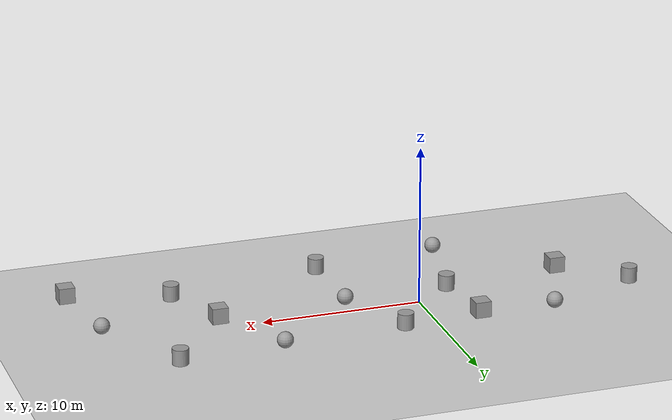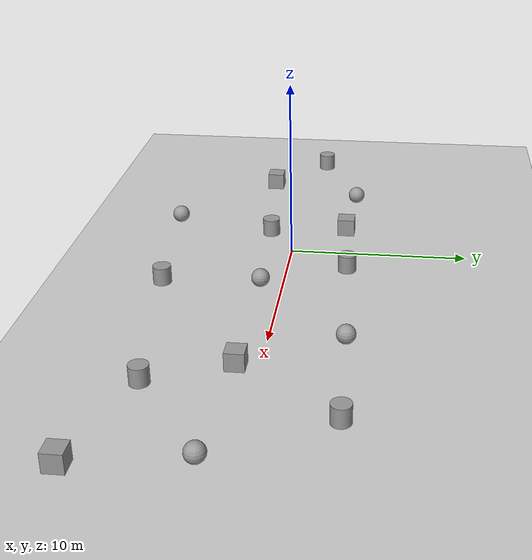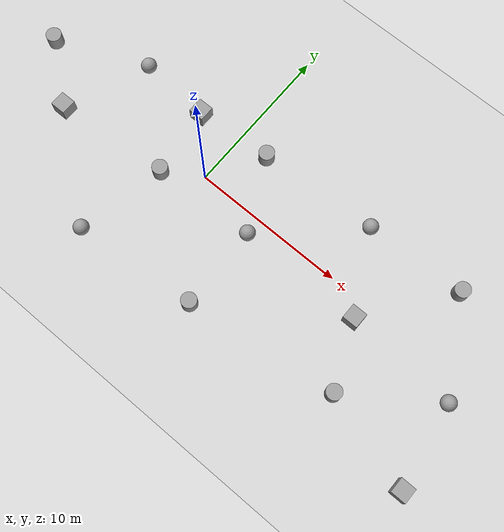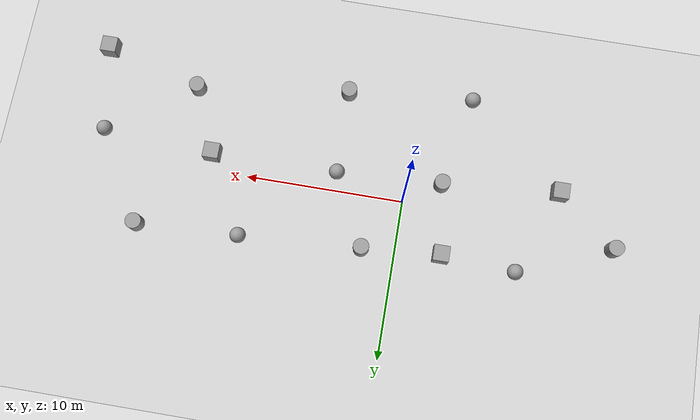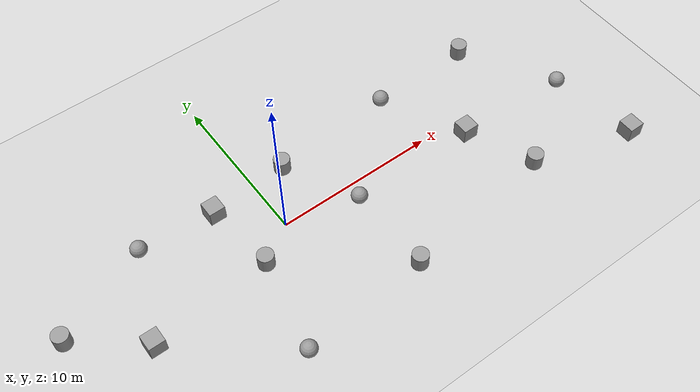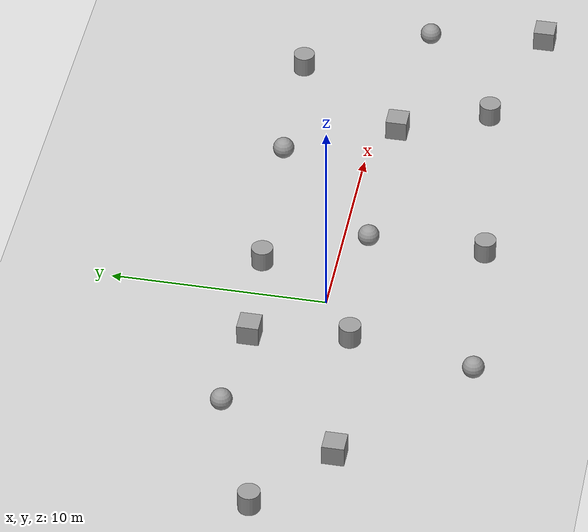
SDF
<sdf version="1.7">
 <world name="default">
  <light name="sun" type="directional">
   <pose>0 0 10 0 -0 0</pose>
   <diffuse>0.8 0.8 0.8 1</diffuse>
   <specular>0.2 0.2 0.2 1</specular>
   <attenuation>
    <range>1000</range>
    <constant>0.9</constant>
    <linear>0.01</linear>
    <quadratic>0.001</quadratic>
   </attenuation>
   <direction>-0.5 0.1 -0.9</direction>
   <spot><inner_angle>0</inner_angle><outer_angle>0</outer_angle><falloff>0</falloff></spot>
  </light>
  <model name="ground_plane">
   <static>1</static>
   <link name="link">
    <collision name="collision">
     <geometry><plane><normal>0 0 1</normal><size>100 100</size></plane></geometry>
     <surface>
      <contact><collide_bitmask>65535</collide_bitmask></contact>
      <friction><ode><mu>100</mu><mu2>50</mu2></ode></friction>
     </surface>
    </collision>
    <visual name="visual">
     <cast_shadows>0</cast_shadows>
     <geometry><plane><normal>0 0 1</normal><size>100 100</size></plane></geometry>
     <material>
      <script><uri>file://media/materials/scripts/gazebo.material</uri><name>Gazebo/Grey</name></script>
     </material>
    </visual>
   </link>
  </model>
  <gravity>0 0 -9.8</gravity>
  <magnetic_field>6e-06 2.3e-05 -4.2e-05</magnetic_field>
  <atmosphere type="adiabatic"/>
  <physics type="ode">
   <max_step_size>0.001</max_step_size>
   <real_time_factor>1</real_time_factor>
   <real_time_update_rate>600</real_time_update_rate>
  </physics>
  <scene><ambient>0.4 0.4 0.4 1</ambient><background>0.7 0.7 0.7 1</background><shadows>1</shadows></scene>
  <spherical_coordinates>
   <surface_model>EARTH_WGS84</surface_model>
   <latitude_deg>0</latitude_deg>
   <longitude_deg>0</longitude_deg>
   <elevation>0</elevation>
   <heading_deg>0</heading_deg>
  </spherical_coordinates>
  <model name="unit_cylinder">
   <pose>2.08591 3.37432 0.499998 3e-06 -2e-06 0</pose>
   <link name="link">
    <inertial>
     <mass>1</mass>
     <inertia><ixx>0.145833</ixx><ixy>0</ixy><ixz>0</ixz><iyy>0.145833</iyy><iyz>0</iyz><izz>0.125</izz></inertia>
    </inertial>
    <collision name="collision">
     <geometry><cylinder><radius>0.5</radius><length>1</length></cylinder></geometry>
    </collision>
    <visual name="visual">
     <geometry><cylinder><radius>0.5</radius><length>1</length></cylinder></geometry>
     <material>
      <script><name>Gazebo/Grey</name><uri>file://media/materials/scripts/gazebo.material</uri></script>
     </material>
    </visual>
   </link>
  </model>
  <model name="unit_sphere">
   <pose>4.37819 -1.17689 0.5 0 -0 0</pose>
   <link name="link">
    <inertial>
     <mass>1</mass>
     <inertia><ixx>0.1</ixx><ixy>0</ixy><ixz>0</ixz><iyy>0.1</iyy><iyz>0</iyz><izz>0.1</izz></inertia>
    </inertial>
    <collision name="collision"><geometry><sphere><radius>0.5</radius></sphere></geometry></collision>
    <visual name="visual">
     <geometry><sphere><radius>0.5</radius></sphere></geometry>
     <material>
      <script><name>Gazebo/Grey</name><uri>file://media/materials/scripts/gazebo.material</uri></script>
     </material>
    </visual>
   </link>
  </model>
  <model name="unit_cylinder_0">
   <pose>-2.29814 -1.50446 0.499998 3e-06 -2e-06 0</pose>
   <link name="link">
    <inertial>
     <mass>1</mass>
     <inertia><ixx>0.145833</ixx><ixy>0</ixy><ixz>0</ixz><iyy>0.145833</iyy><iyz>0</iyz><izz>0.125</izz></inertia>
    </inertial>
    <collision name="collision">
     <geometry><cylinder><radius>0.5</radius><length>1</length></cylinder></geometry>
    </collision>
    <visual name="visual">
     <geometry><cylinder><radius>0.5</radius><length>1</length></cylinder></geometry>
     <material>
      <script><name>Gazebo/Grey</name><uri>file://media/materials/scripts/gazebo.material</uri></script>
     </material>
    </visual>
   </link>
  </model>
  <model name="unit_box">
   <pose>-2.87318 2.97995 0.499995 0 -1e-05 0</pose>
   <link name="link">
    <inertial>
     <mass>1</mass>
     <inertia>
      <ixx>0.166667</ixx>
      <ixy>0</ixy>
      <ixz>0</ixz>
      <iyy>0.166667</iyy>
      <iyz>0</iyz>
      <izz>0.166667</izz>
     </inertia>
    </inertial>
    <collision name="collision"><geometry><box><size>1 1 1</size></box></geometry></collision>
    <visual name="visual">
     <geometry><box><size>1 1 1</size></box></geometry>
     <material>
      <script><name>Gazebo/Grey</name><uri>file://media/materials/scripts/gazebo.material</uri></script>
     </material>
    </visual>
   </link>
  </model>
  <model name="unit_sphere_0">
   <pose>9.79038 3.86215 0.5 0 -0 0</pose>
   <link name="link">
    <inertial>
     <mass>1</mass>
     <inertia><ixx>0.1</ixx><ixy>0</ixy><ixz>0</ixz><iyy>0.1</iyy><iyz>0</iyz><izz>0.1</izz></inertia>
    </inertial>
    <collision name="collision"><geometry><sphere><radius>0.5</radius></sphere></geometry></collision>
    <visual name="visual">
     <geometry><sphere><radius>0.5</radius></sphere></geometry>
     <material>
      <script><name>Gazebo/Grey</name><uri>file://media/materials/scripts/gazebo.material</uri></script>
     </material>
    </visual>
   </link>
  </model>
  <model name="unit_box_0">
   <pose>12.429 -1.14952 0.499995 -1e-05 -0 -0</pose>
   <link name="link">
    <inertial>
     <mass>1</mass>
     <inertia>
      <ixx>0.166667</ixx>
      <ixy>0</ixy>
      <ixz>0</ixz>
      <iyy>0.166667</iyy>
      <iyz>0</iyz>
      <izz>0.166667</izz>
     </inertia>
    </inertial>
    <collision name="collision"><geometry><box><size>1 1 1</size></box></geometry></collision>
    <visual name="visual">
     <geometry><box><size>1 1 1</size></box></geometry>
     <material>
      <script><name>Gazebo/Grey</name><uri>file://media/materials/scripts/gazebo.material</uri></script>
     </material>
    </visual>
   </link>
  </model>
  <model name="unit_cylinder_1">
   <pose>16.2912 4.10525 0.499992 -3e-06 3e-06 0</pose>
   <link name="link">
    <inertial>
     <mass>1</mass>
     <inertia><ixx>0.145833</ixx><ixy>0</ixy><ixz>0</ixz><iyy>0.145833</iyy><iyz>0</iyz><izz>0.125</izz></inertia>
    </inertial>
    <collision name="collision">
     <geometry><cylinder><radius>0.5</radius><length>1</length></cylinder></geometry>
    </collision>
    <visual name="visual">
     <geometry><cylinder><radius>0.5</radius><length>1</length></cylinder></geometry>
     <material>
      <script><name>Gazebo/Grey</name><uri>file://media/materials/scripts/gazebo.material</uri></script>
     </material>
    </visual>
   </link>
  </model>
  <model name="unit_box_1">
   <pose>-9.72362 -2.17873 0.499995 1e-05 -0 0</pose>
   <link name="link">
    <inertial>
     <mass>1</mass>
     <inertia>
      <ixx>0.166667</ixx>
      <ixy>0</ixy>
      <ixz>0</ixz>
      <iyy>0.166667</iyy>
      <iyz>0</iyz>
      <izz>0.166667</izz>
     </inertia>
    </inertial>
    <collision name="collision"><geometry><box><size>1 1 1</size></box></geometry></collision>
    <visual name="visual">
     <geometry><box><size>1 1 1</size></box></geometry>
     <material>
      <script><name>Gazebo/Grey</name><uri>file://media/materials/scripts/gazebo.material</uri></script>
     </material>
    </visual>
   </link>
  </model>
  <model name="unit_sphere_1">
   <pose>-7.54983 3.31504 0.5 0 -0 0</pose>
   <link name="link">
    <inertial>
     <mass>1</mass>
     <inertia><ixx>0.1</ixx><ixy>0</ixy><ixz>0</ixz><iyy>0.1</iyy><iyz>0</iyz><izz>0.1</izz></inertia>
    </inertial>
    <collision name="collision"><geometry><sphere><radius>0.5</radius></sphere></geometry></collision>
    <visual name="visual">
     <geometry><sphere><radius>0.5</radius></sphere></geometry>
     <material>
      <script><name>Gazebo/Grey</name><uri>file://media/materials/scripts/gazebo.material</uri></script>
     </material>
    </visual>
   </link>
  </model>
  <model name="unit_cylinder_2">
   <pose>-13.4497 0.892769 0.499998 3e-06 -3e-06 0</pose>
   <link name="link">
    <inertial>
     <mass>1</mass>
     <inertia><ixx>0.145833</ixx><ixy>0</ixy><ixz>0</ixz><iyy>0.145833</iyy><iyz>0</iyz><izz>0.125</izz></inertia>
    </inertial>
    <collision name="collision">
     <geometry><cylinder><radius>0.5</radius><length>1</length></cylinder></geometry>
    </collision>
    <visual name="visual">
     <geometry><cylinder><radius>0.5</radius><length>1</length></cylinder></geometry>
     <material>
      <script><name>Gazebo/Grey</name><uri>file://media/materials/scripts/gazebo.material</uri></script>
     </material>
    </visual>
   </link>
  </model>
  <model name="unit_sphere_2">
   <pose>19.5567 -1.58048 0.5 0 -0 0</pose>
   <link name="link">
    <inertial>
     <mass>1</mass>
     <inertia><ixx>0.1</ixx><ixy>0</ixy><ixz>0</ixz><iyy>0.1</iyy><iyz>0</iyz><izz>0.1</izz></inertia>
    </inertial>
    <collision name="collision"><geometry><sphere><radius>0.5</radius></sphere></geometry></collision>
    <visual name="visual">
     <geometry><sphere><radius>0.5</radius></sphere></geometry>
     <material>
      <script><name>Gazebo/Grey</name><uri>file://media/materials/scripts/gazebo.material</uri></script>
     </material>
    </visual>
   </link>
  </model>
  <model name="unit_cylinder_3">
   <pose>14.2213 -5.3154 0.499998 3e-06 -4e-06 0</pose>
   <link name="link">
    <inertial>
     <mass>1</mass>
     <inertia><ixx>0.145833</ixx><ixy>0</ixy><ixz>0</ixz><iyy>0.145833</iyy><iyz>0</iyz><izz>0.125</izz></inertia>
    </inertial>
    <collision name="collision">
     <geometry><cylinder><radius>0.5</radius><length>1</length></cylinder></geometry>
    </collision>
    <visual name="visual">
     <geometry><cylinder><radius>0.5</radius><length>1</length></cylinder></geometry>
     <material>
      <script><name>Gazebo/Grey</name><uri>file://media/materials/scripts/gazebo.material</uri></script>
     </material>
    </visual>
   </link>
  </model>
  <model name="unit_box_2">
   <pose>20.4121 -7.07644 0.499995 0 -1e-05 0</pose>
   <link name="link">
    <inertial>
     <mass>1</mass>
     <inertia>
      <ixx>0.166667</ixx>
      <ixy>0</ixy>
      <ixz>0</ixz>
      <iyy>0.166667</iyy>
      <iyz>0</iyz>
      <izz>0.166667</izz>
     </inertia>
    </inertial>
    <collision name="collision"><geometry><box><size>1 1 1</size></box></geometry></collision>
    <visual name="visual">
     <geometry><box><size>1 1 1</size></box></geometry>
     <material>
      <script><name>Gazebo/Grey</name><uri>file://media/materials/scripts/gazebo.material</uri></script>
     </material>
    </visual>
   </link>
  </model>
  <model name="unit_cylinder_4">
   <pose>4.49244 -6.59476 0.499992 -3e-06 4e-06 0</pose>
   <link name="link">
    <inertial>
     <mass>1</mass>
     <inertia><ixx>0.145833</ixx><ixy>0</ixy><ixz>0</ixz><iyy>0.145833</iyy><iyz>0</iyz><izz>0.125</izz></inertia>
    </inertial>
    <collision name="collision">
     <geometry><cylinder><radius>0.5</radius><length>1</length></cylinder></geometry>
    </collision>
    <visual name="visual">
     <geometry><cylinder><radius>0.5</radius><length>1</length></cylinder></geometry>
     <material>
      <script><name>Gazebo/Grey</name><uri>file://media/materials/scripts/gazebo.material</uri></script>
     </material>
    </visual>
   </link>
  </model>
  <model name="unit_sphere_3">
   <pose>-3.48671 -7.30886 0.5 0 -0 0</pose>
   <link name="link">
    <inertial>
     <mass>1</mass>
     <inertia><ixx>0.1</ixx><ixy>0</ixy><ixz>0</ixz><iyy>0.1</iyy><iyz>0</iyz><izz>0.1</izz></inertia>
    </inertial>
    <collision name="collision"><geometry><sphere><radius>0.5</radius></sphere></geometry></collision>
    <visual name="visual">
     <geometry><sphere><radius>0.5</radius></sphere></geometry>
     <material>
      <script><name>Gazebo/Grey</name><uri>file://media/materials/scripts/gazebo.material</uri></script>
     </material>
    </visual>
   </link>
  </model>
 </world>
</sdf>
